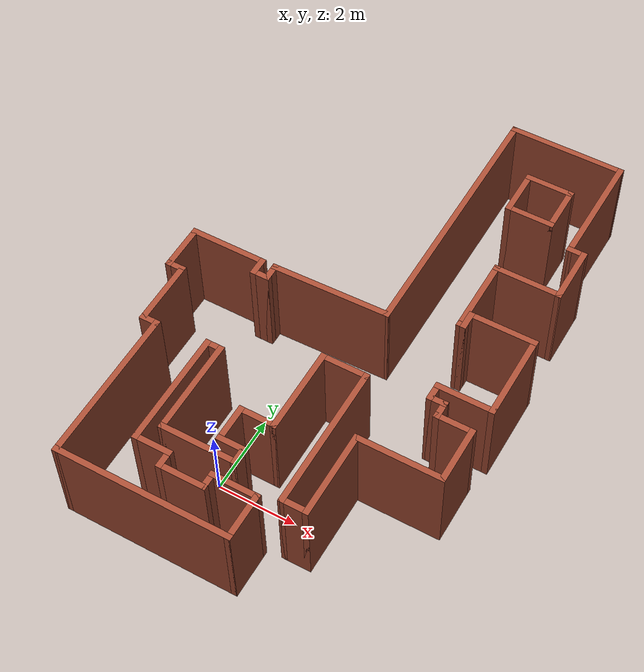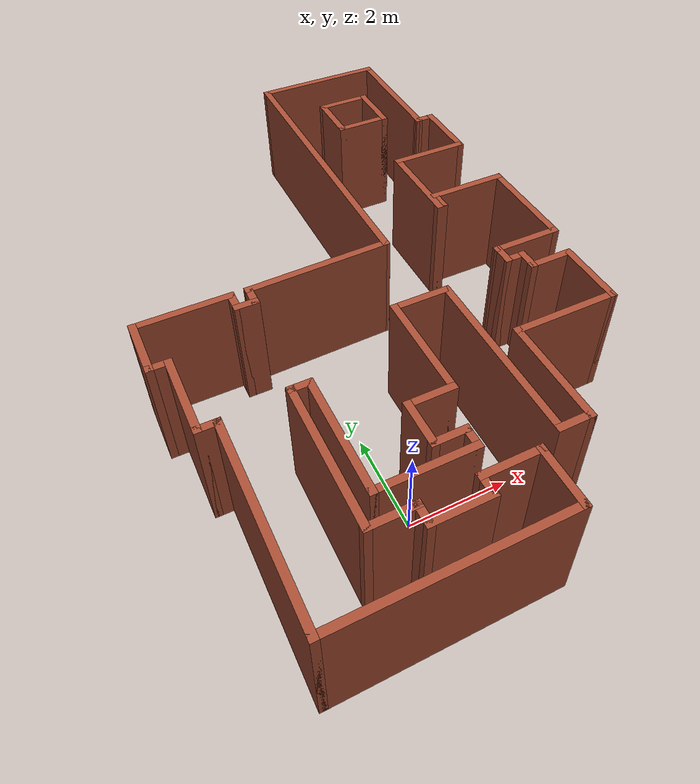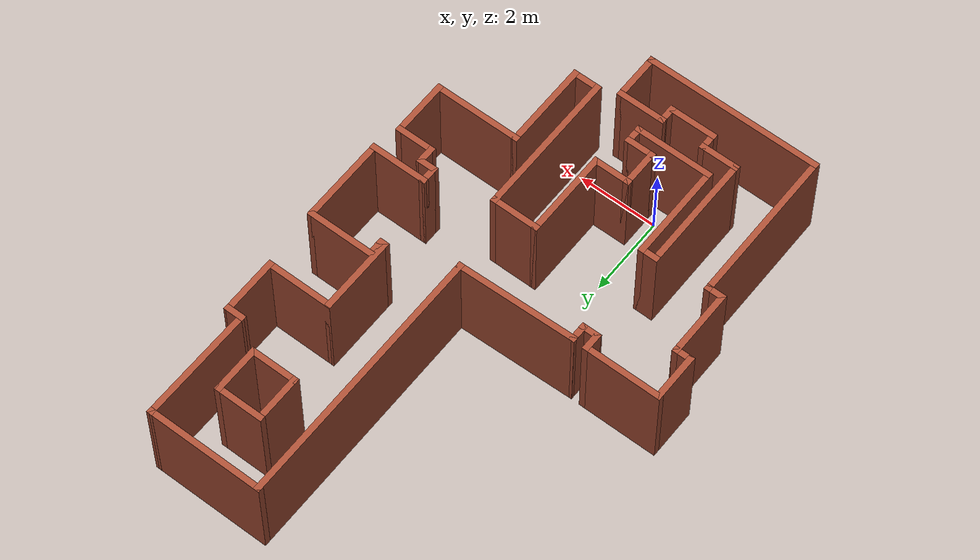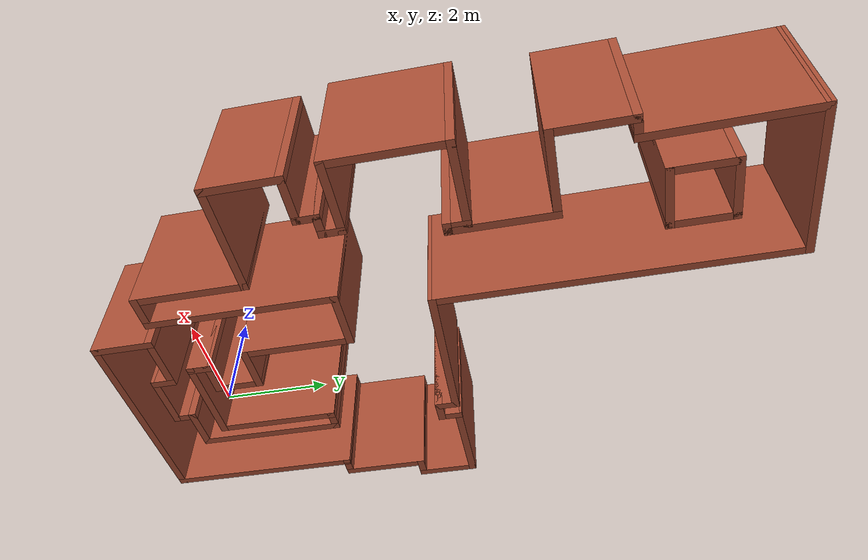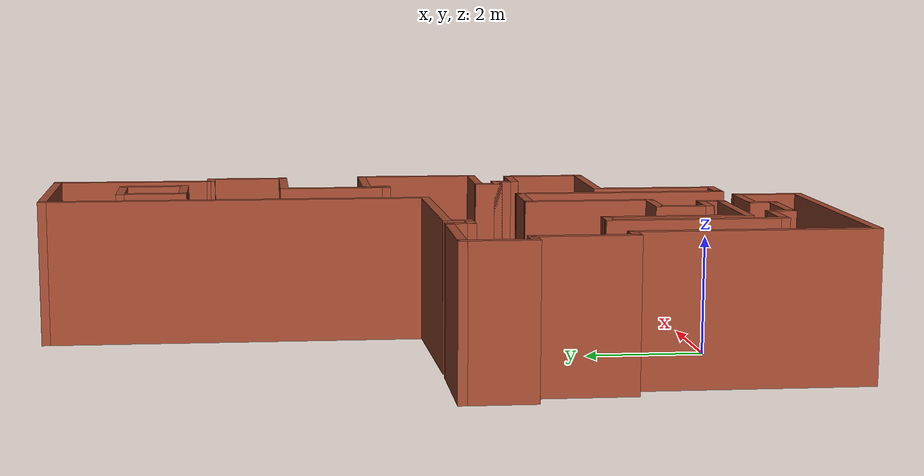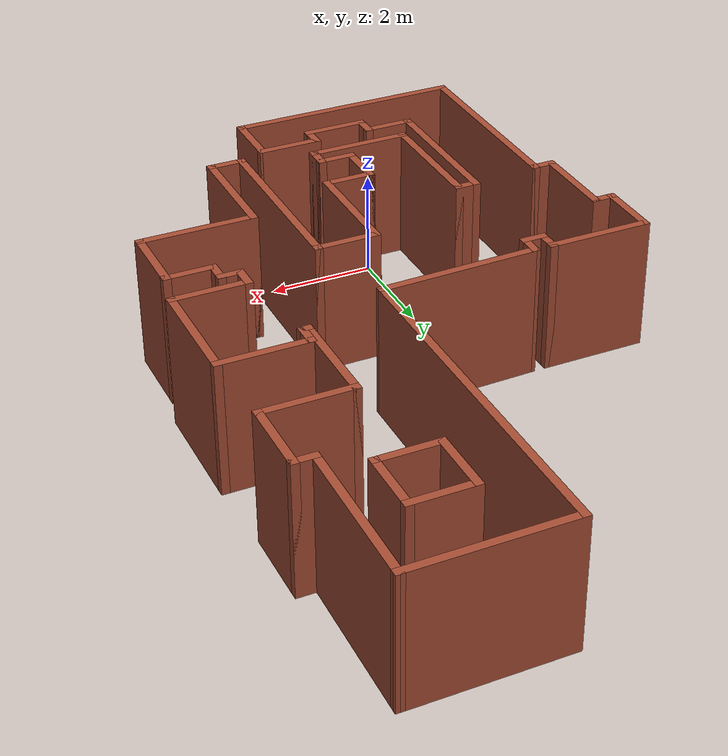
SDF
<?xml version='1.0'?>
<sdf version='1.6'>
  <model name='map_133'>
    <pose frame=''>0.888225 4.53364 0 0 -0 0</pose>
    <link name='Wall_0'>
      <collision name='Wall_0_Collision'>
        <geometry>
          <box>
            <size>3 0.15 2.5</size>
          </box>
        </geometry>
        <pose frame=''>0 0 1.25 0 -0 0</pose>
      </collision>
      <visual name='Wall_0_Visual'>
        <pose frame=''>0 0 1.25 0 -0 0</pose>
        <geometry>
          <box>
            <size>3 0.15 2.5</size>
          </box>
        </geometry>
        <material>
          <script>
            <uri>file://media/materials/scripts/gazebo.material</uri>
            <name>Gazebo/Bricks</name>
          </script>
          <ambient>1 1 1 1</ambient>
        </material>
        <meta>
          <layer>0</layer>
        </meta>
      </visual>
      <pose frame=''>2.35294 6.61348 0 0 -0 3.14159</pose>
    </link>
    <link name='Wall_1'>
      <collision name='Wall_1_Collision'>
        <geometry>
          <box>
            <size>6.75 0.15 2.5</size>
          </box>
        </geometry>
        <pose frame=''>0 0 1.25 0 -0 0</pose>
      </collision>
      <visual name='Wall_1_Visual'>
        <pose frame=''>0 0 1.25 0 -0 0</pose>
        <geometry>
          <box>
            <size>6.75 0.15 2.5</size>
          </box>
        </geometry>
        <material>
          <script>
            <uri>file://media/materials/scripts/gazebo.material</uri>
            <name>Gazebo/Bricks</name>
          </script>
          <ambient>1 1 1 1</ambient>
        </material>
        <meta>
          <layer>0</layer>
        </meta>
      </visual>
      <pose frame=''>0.927944 3.31348 0 0 -0 -1.5708</pose>
    </link>
    <link name='Wall_10'>
      <collision name='Wall_10_Collision'>
        <geometry>
          <box>
            <size>0.5 0.15 2.5</size>
          </box>
        </geometry>
        <pose frame=''>0 0 1.25 0 -0 0</pose>
      </collision>
      <visual name='Wall_10_Visual'>
        <pose frame=''>0 0 1.25 0 -0 0</pose>
        <geometry>
          <box>
            <size>0.5 0.15 2.5</size>
          </box>
        </geometry>
        <material>
          <script>
            <uri>file://media/materials/scripts/gazebo.material</uri>
            <name>Gazebo/Bricks</name>
          </script>
          <ambient>1 1 1 1</ambient>
        </material>
        <meta>
          <layer>0</layer>
        </meta>
      </visual>
      <pose frame=''>-4.025 -1.16422 0 0 -0 0</pose>
    </link>
    <link name='Wall_11'>
      <collision name='Wall_11_Collision'>
        <geometry>
          <box>
            <size>1.75 0.15 2.5</size>
          </box>
        </geometry>
        <pose frame=''>0 0 1.25 0 -0 0</pose>
      </collision>
      <visual name='Wall_11_Visual'>
        <pose frame=''>0 0 1.25 0 -0 0</pose>
        <geometry>
          <box>
            <size>1.75 0.15 2.5</size>
          </box>
        </geometry>
        <material>
          <script>
            <uri>file://media/materials/scripts/gazebo.material</uri>
            <name>Gazebo/Bricks</name>
          </script>
          <ambient>1 1 1 1</ambient>
        </material>
        <meta>
          <layer>0</layer>
        </meta>
      </visual>
      <pose frame=''>-3.85 -1.96422 0 0 -0 -1.5708</pose>
    </link>
    <link name='Wall_12'>
      <collision name='Wall_12_Collision'>
        <geometry>
          <box>
            <size>0.5 0.15 2.5</size>
          </box>
        </geometry>
        <pose frame=''>0 0 1.25 0 -0 0</pose>
      </collision>
      <visual name='Wall_12_Visual'>
        <pose frame=''>0 0 1.25 0 -0 0</pose>
        <geometry>
          <box>
            <size>0.5 0.15 2.5</size>
          </box>
        </geometry>
        <material>
          <script>
            <uri>file://media/materials/scripts/gazebo.material</uri>
            <name>Gazebo/Bricks</name>
          </script>
          <ambient>1 1 1 1</ambient>
        </material>
        <meta>
          <layer>0</layer>
        </meta>
      </visual>
      <pose frame=''>-3.675 -2.76422 0 0 -0 0</pose>
    </link>
    <link name='Wall_13'>
      <collision name='Wall_13_Collision'>
        <geometry>
          <box>
            <size>4 0.15 2.5</size>
          </box>
        </geometry>
        <pose frame=''>0 0 1.25 0 -0 0</pose>
      </collision>
      <visual name='Wall_13_Visual'>
        <pose frame=''>0 0 1.25 0 -0 0</pose>
        <geometry>
          <box>
            <size>4 0.15 2.5</size>
          </box>
        </geometry>
        <material>
          <script>
            <uri>file://media/materials/scripts/gazebo.material</uri>
            <name>Gazebo/Bricks</name>
          </script>
          <ambient>1 1 1 1</ambient>
        </material>
        <meta>
          <layer>0</layer>
        </meta>
      </visual>
      <pose frame=''>-3.5 -4.68922 0 0 -0 -1.5708</pose>
    </link>
    <link name='Wall_14'>
      <collision name='Wall_14_Collision'>
        <geometry>
          <box>
            <size>4.5 0.15 2.5</size>
          </box>
        </geometry>
        <pose frame=''>0 0 1.25 0 -0 0</pose>
      </collision>
      <visual name='Wall_14_Visual'>
        <pose frame=''>0 0 1.25 0 -0 0</pose>
        <geometry>
          <box>
            <size>4.5 0.15 2.5</size>
          </box>
        </geometry>
        <material>
          <script>
            <uri>file://media/materials/scripts/gazebo.material</uri>
            <name>Gazebo/Bricks</name>
          </script>
          <ambient>1 1 1 1</ambient>
        </material>
        <meta>
          <layer>0</layer>
        </meta>
      </visual>
      <pose frame=''>-1.325 -6.61422 0 0 -0 0</pose>
    </link>
    <link name='Wall_15'>
      <collision name='Wall_15_Collision'>
        <geometry>
          <box>
            <size>1.25 0.15 2.5</size>
          </box>
        </geometry>
        <pose frame=''>0 0 1.25 0 -0 0</pose>
      </collision>
      <visual name='Wall_15_Visual'>
        <pose frame=''>0 0 1.25 0 -0 0</pose>
        <geometry>
          <box>
            <size>1.25 0.15 2.5</size>
          </box>
        </geometry>
        <material>
          <script>
            <uri>file://media/materials/scripts/gazebo.material</uri>
            <name>Gazebo/Bricks</name>
          </script>
          <ambient>1 1 1 1</ambient>
        </material>
        <meta>
          <layer>0</layer>
        </meta>
      </visual>
      <pose frame=''>0.85 -6.06422 0 0 -0 1.5708</pose>
    </link>
    <link name='Wall_16'>
      <collision name='Wall_16_Collision'>
        <geometry>
          <box>
            <size>1.25 0.15 2.5</size>
          </box>
        </geometry>
        <pose frame=''>0 0 1.25 0 -0 0</pose>
      </collision>
      <visual name='Wall_16_Visual'>
        <pose frame=''>0 0 1.25 0 -0 0</pose>
        <geometry>
          <box>
            <size>1.25 0.15 2.5</size>
          </box>
        </geometry>
        <material>
          <script>
            <uri>file://media/materials/scripts/gazebo.material</uri>
            <name>Gazebo/Bricks</name>
          </script>
          <ambient>1 1 1 1</ambient>
        </material>
        <meta>
          <layer>0</layer>
        </meta>
      </visual>
      <pose frame=''>0.3 -5.51422 0 0 -0 3.14159</pose>
    </link>
    <link name='Wall_17'>
      <collision name='Wall_17_Collision'>
        <geometry>
          <box>
            <size>0.5 0.15 2.5</size>
          </box>
        </geometry>
        <pose frame=''>0 0 1.25 0 -0 0</pose>
      </collision>
      <visual name='Wall_17_Visual'>
        <pose frame=''>0 0 1.25 0 -0 0</pose>
        <geometry>
          <box>
            <size>0.5 0.15 2.5</size>
          </box>
        </geometry>
        <material>
          <script>
            <uri>file://media/materials/scripts/gazebo.material</uri>
            <name>Gazebo/Bricks</name>
          </script>
          <ambient>1 1 1 1</ambient>
        </material>
        <meta>
          <layer>0</layer>
        </meta>
      </visual>
      <pose frame=''>-0.25 -5.68922 0 0 -0 -1.5708</pose>
    </link>
    <link name='Wall_18'>
      <collision name='Wall_18_Collision'>
        <geometry>
          <box>
            <size>1.25 0.15 2.5</size>
          </box>
        </geometry>
        <pose frame=''>0 0 1.25 0 -0 0</pose>
      </collision>
      <visual name='Wall_18_Visual'>
        <pose frame=''>0 0 1.25 0 -0 0</pose>
        <geometry>
          <box>
            <size>1.25 0.15 2.5</size>
          </box>
        </geometry>
        <material>
          <script>
            <uri>file://media/materials/scripts/gazebo.material</uri>
            <name>Gazebo/Bricks</name>
          </script>
          <ambient>1 1 1 1</ambient>
        </material>
        <meta>
          <layer>0</layer>
        </meta>
      </visual>
      <pose frame=''>-0.8 -5.86422 0 0 -0 3.14159</pose>
    </link>
    <link name='Wall_19'>
      <collision name='Wall_19_Collision'>
        <geometry>
          <box>
            <size>0.5 0.15 2.5</size>
          </box>
        </geometry>
        <pose frame=''>0 0 1.25 0 -0 0</pose>
      </collision>
      <visual name='Wall_19_Visual'>
        <pose frame=''>0 0 1.25 0 -0 0</pose>
        <geometry>
          <box>
            <size>0.5 0.15 2.5</size>
          </box>
        </geometry>
        <material>
          <script>
            <uri>file://media/materials/scripts/gazebo.material</uri>
            <name>Gazebo/Bricks</name>
          </script>
          <ambient>1 1 1 1</ambient>
        </material>
        <meta>
          <layer>0</layer>
        </meta>
      </visual>
      <pose frame=''>-1.35 -5.68922 0 0 -0 1.5708</pose>
    </link>
    <link name='Wall_20'>
      <collision name='Wall_20_Collision'>
        <geometry>
          <box>
            <size>1 0.15 2.5</size>
          </box>
        </geometry>
        <pose frame=''>0 0 1.25 0 -0 0</pose>
      </collision>
      <visual name='Wall_20_Visual'>
        <pose frame=''>0 0 1.25 0 -0 0</pose>
        <geometry>
          <box>
            <size>1 0.15 2.5</size>
          </box>
        </geometry>
        <material>
          <script>
            <uri>file://media/materials/scripts/gazebo.material</uri>
            <name>Gazebo/Bricks</name>
          </script>
          <ambient>1 1 1 1</ambient>
        </material>
        <meta>
          <layer>0</layer>
        </meta>
      </visual>
      <pose frame=''>-1.775 -5.51422 0 0 -0 3.14159</pose>
    </link>
    <link name='Wall_21'>
      <collision name='Wall_21_Collision'>
        <geometry>
          <box>
            <size>3 0.15 2.5</size>
          </box>
        </geometry>
        <pose frame=''>0 0 1.25 0 -0 0</pose>
      </collision>
      <visual name='Wall_21_Visual'>
        <pose frame=''>0 0 1.25 0 -0 0</pose>
        <geometry>
          <box>
            <size>3 0.15 2.5</size>
          </box>
        </geometry>
        <material>
          <script>
            <uri>file://media/materials/scripts/gazebo.material</uri>
            <name>Gazebo/Bricks</name>
          </script>
          <ambient>1 1 1 1</ambient>
        </material>
        <meta>
          <layer>0</layer>
        </meta>
      </visual>
      <pose frame=''>-2.2 -4.08922 0 0 -0 1.5708</pose>
    </link>
    <link name='Wall_22'>
      <collision name='Wall_22_Collision'>
        <geometry>
          <box>
            <size>0.5 0.15 2.5</size>
          </box>
        </geometry>
        <pose frame=''>0 0 1.25 0 -0 0</pose>
      </collision>
      <visual name='Wall_22_Visual'>
        <pose frame=''>0 0 1.25 0 -0 0</pose>
        <geometry>
          <box>
            <size>0.5 0.15 2.5</size>
          </box>
        </geometry>
        <material>
          <script>
            <uri>file://media/materials/scripts/gazebo.material</uri>
            <name>Gazebo/Bricks</name>
          </script>
          <ambient>1 1 1 1</ambient>
        </material>
        <meta>
          <layer>0</layer>
        </meta>
      </visual>
      <pose frame=''>-2.025 -2.66422 0 0 -0 0</pose>
    </link>
    <link name='Wall_23'>
      <collision name='Wall_23_Collision'>
        <geometry>
          <box>
            <size>2.5 0.15 2.5</size>
          </box>
        </geometry>
        <pose frame=''>0 0 1.25 0 -0 0</pose>
      </collision>
      <visual name='Wall_23_Visual'>
        <pose frame=''>0 0 1.25 0 -0 0</pose>
        <geometry>
          <box>
            <size>2.5 0.15 2.5</size>
          </box>
        </geometry>
        <material>
          <script>
            <uri>file://media/materials/scripts/gazebo.material</uri>
            <name>Gazebo/Bricks</name>
          </script>
          <ambient>1 1 1 1</ambient>
        </material>
        <meta>
          <layer>0</layer>
        </meta>
      </visual>
      <pose frame=''>-1.85 -3.83922 0 0 -0 -1.5708</pose>
    </link>
    <link name='Wall_24'>
      <collision name='Wall_24_Collision'>
        <geometry>
          <box>
            <size>2 0.15 2.5</size>
          </box>
        </geometry>
        <pose frame=''>0 0 1.25 0 -0 0</pose>
      </collision>
      <visual name='Wall_24_Visual'>
        <pose frame=''>0 0 1.25 0 -0 0</pose>
        <geometry>
          <box>
            <size>2 0.15 2.5</size>
          </box>
        </geometry>
        <material>
          <script>
            <uri>file://media/materials/scripts/gazebo.material</uri>
            <name>Gazebo/Bricks</name>
          </script>
          <ambient>1 1 1 1</ambient>
        </material>
        <meta>
          <layer>0</layer>
        </meta>
      </visual>
      <pose frame=''>-0.925 -5.01422 0 0 -0 0</pose>
    </link>
    <link name='Wall_25'>
      <collision name='Wall_25_Collision'>
        <geometry>
          <box>
            <size>0.5 0.15 2.5</size>
          </box>
        </geometry>
        <pose frame=''>0 0 1.25 0 -0 0</pose>
      </collision>
      <visual name='Wall_25_Visual'>
        <pose frame=''>0 0 1.25 0 -0 0</pose>
        <geometry>
          <box>
            <size>0.5 0.15 2.5</size>
          </box>
        </geometry>
        <material>
          <script>
            <uri>file://media/materials/scripts/gazebo.material</uri>
            <name>Gazebo/Bricks</name>
          </script>
          <ambient>1 1 1 1</ambient>
        </material>
        <meta>
          <layer>0</layer>
        </meta>
      </visual>
      <pose frame=''>-0 -4.83922 0 0 -0 1.5708</pose>
    </link>
    <link name='Wall_26'>
      <collision name='Wall_26_Collision'>
        <geometry>
          <box>
            <size>0.75 0.15 2.5</size>
          </box>
        </geometry>
        <pose frame=''>0 0 1.25 0 -0 0</pose>
      </collision>
      <visual name='Wall_26_Visual'>
        <pose frame=''>0 0 1.25 0 -0 0</pose>
        <geometry>
          <box>
            <size>0.75 0.15 2.5</size>
          </box>
        </geometry>
        <material>
          <script>
            <uri>file://media/materials/scripts/gazebo.material</uri>
            <name>Gazebo/Bricks</name>
          </script>
          <ambient>1 1 1 1</ambient>
        </material>
        <meta>
          <layer>0</layer>
        </meta>
      </visual>
      <pose frame=''>-0.3 -4.66422 0 0 -0 3.14159</pose>
    </link>
    <link name='Wall_27'>
      <collision name='Wall_27_Collision'>
        <geometry>
          <box>
            <size>1 0.15 2.5</size>
          </box>
        </geometry>
        <pose frame=''>0 0 1.25 0 -0 0</pose>
      </collision>
      <visual name='Wall_27_Visual'>
        <pose frame=''>0 0 1.25 0 -0 0</pose>
        <geometry>
          <box>
            <size>1 0.15 2.5</size>
          </box>
        </geometry>
        <material>
          <script>
            <uri>file://media/materials/scripts/gazebo.material</uri>
            <name>Gazebo/Bricks</name>
          </script>
          <ambient>1 1 1 1</ambient>
        </material>
        <meta>
          <layer>0</layer>
        </meta>
      </visual>
      <pose frame=''>-0.6 -4.23922 0 0 -0 1.5708</pose>
    </link>
    <link name='Wall_28'>
      <collision name='Wall_28_Collision'>
        <geometry>
          <box>
            <size>1 0.15 2.5</size>
          </box>
        </geometry>
        <pose frame=''>0 0 1.25 0 -0 0</pose>
      </collision>
      <visual name='Wall_28_Visual'>
        <pose frame=''>0 0 1.25 0 -0 0</pose>
        <geometry>
          <box>
            <size>1 0.15 2.5</size>
          </box>
        </geometry>
        <material>
          <script>
            <uri>file://media/materials/scripts/gazebo.material</uri>
            <name>Gazebo/Bricks</name>
          </script>
          <ambient>1 1 1 1</ambient>
        </material>
        <meta>
          <layer>0</layer>
        </meta>
      </visual>
      <pose frame=''>-0.175 -3.81422 0 0 -0 0</pose>
    </link>
    <link name='Wall_30'>
      <collision name='Wall_30_Collision'>
        <geometry>
          <box>
            <size>3.07897 0.15 2.5</size>
          </box>
        </geometry>
        <pose frame=''>0 0 1.25 0 -0 0</pose>
      </collision>
      <visual name='Wall_30_Visual'>
        <pose frame=''>0 0 1.25 0 -0 0</pose>
        <geometry>
          <box>
            <size>3.07897 0.15 2.5</size>
          </box>
        </geometry>
        <material>
          <script>
            <uri>file://media/materials/scripts/gazebo.material</uri>
            <name>Gazebo/Bricks</name>
          </script>
          <ambient>1 1 1 1</ambient>
        </material>
        <meta>
          <layer>0</layer>
        </meta>
      </visual>
      <pose frame=''>-0.536028 -0.025369 0 0 -0 0.026533</pose>
    </link>
    <link name='Wall_35'>
      <collision name='Wall_35_Collision'>
        <geometry>
          <box>
            <size>0.75 0.15 2.5</size>
          </box>
        </geometry>
        <pose frame=''>0 0 1.25 0 -0 0</pose>
      </collision>
      <visual name='Wall_35_Visual'>
        <pose frame=''>0 0 1.25 0 -0 0</pose>
        <geometry>
          <box>
            <size>0.75 0.15 2.5</size>
          </box>
        </geometry>
        <material>
          <script>
            <uri>file://media/materials/scripts/gazebo.material</uri>
            <name>Gazebo/Bricks</name>
          </script>
          <ambient>1 1 1 1</ambient>
        </material>
        <meta>
          <layer>0</layer>
        </meta>
      </visual>
      <pose frame=''>1.65 -5.31422 0 0 -0 0</pose>
    </link>
    <link name='Wall_36'>
      <collision name='Wall_36_Collision'>
        <geometry>
          <box>
            <size>2.25 0.15 2.5</size>
          </box>
        </geometry>
        <pose frame=''>0 0 1.25 0 -0 0</pose>
      </collision>
      <visual name='Wall_36_Visual'>
        <pose frame=''>0 0 1.25 0 -0 0</pose>
        <geometry>
          <box>
            <size>2.25 0.15 2.5</size>
          </box>
        </geometry>
        <material>
          <script>
            <uri>file://media/materials/scripts/gazebo.material</uri>
            <name>Gazebo/Bricks</name>
          </script>
          <ambient>1 1 1 1</ambient>
        </material>
        <meta>
          <layer>0</layer>
        </meta>
      </visual>
      <pose frame=''>1.95 -4.26422 0 0 -0 1.5708</pose>
    </link>
    <link name='Wall_37'>
      <collision name='Wall_37_Collision'>
        <geometry>
          <box>
            <size>2.25 0.15 2.5</size>
          </box>
        </geometry>
        <pose frame=''>0 0 1.25 0 -0 0</pose>
      </collision>
      <visual name='Wall_37_Visual'>
        <pose frame=''>0 0 1.25 0 -0 0</pose>
        <geometry>
          <box>
            <size>2.25 0.15 2.5</size>
          </box>
        </geometry>
        <material>
          <script>
            <uri>file://media/materials/scripts/gazebo.material</uri>
            <name>Gazebo/Bricks</name>
          </script>
          <ambient>1 1 1 1</ambient>
        </material>
        <meta>
          <layer>0</layer>
        </meta>
      </visual>
      <pose frame=''>3 -3.21422 0 0 -0 0</pose>
    </link>
    <link name='Wall_38'>
      <collision name='Wall_38_Collision'>
        <geometry>
          <box>
            <size>1.5 0.15 2.5</size>
          </box>
        </geometry>
        <pose frame=''>0 0 1.25 0 -0 0</pose>
      </collision>
      <visual name='Wall_38_Visual'>
        <pose frame=''>0 0 1.25 0 -0 0</pose>
        <geometry>
          <box>
            <size>1.5 0.15 2.5</size>
          </box>
        </geometry>
        <material>
          <script>
            <uri>file://media/materials/scripts/gazebo.material</uri>
            <name>Gazebo/Bricks</name>
          </script>
          <ambient>1 1 1 1</ambient>
        </material>
        <meta>
          <layer>0</layer>
        </meta>
      </visual>
      <pose frame=''>4.05 -2.53922 0 0 -0 1.5708</pose>
    </link>
    <link name='Wall_39'>
      <collision name='Wall_39_Collision'>
        <geometry>
          <box>
            <size>1 0.15 2.5</size>
          </box>
        </geometry>
        <pose frame=''>0 0 1.25 0 -0 0</pose>
      </collision>
      <visual name='Wall_39_Visual'>
        <pose frame=''>0 0 1.25 0 -0 0</pose>
        <geometry>
          <box>
            <size>1 0.15 2.5</size>
          </box>
        </geometry>
        <material>
          <script>
            <uri>file://media/materials/scripts/gazebo.material</uri>
            <name>Gazebo/Bricks</name>
          </script>
          <ambient>1 1 1 1</ambient>
        </material>
        <meta>
          <layer>0</layer>
        </meta>
      </visual>
      <pose frame=''>3.625 -1.86422 0 0 -0 3.14159</pose>
    </link>
    <link name='Wall_40'>
      <collision name='Wall_40_Collision'>
        <geometry>
          <box>
            <size>0.5 0.15 2.5</size>
          </box>
        </geometry>
        <pose frame=''>0 0 1.25 0 -0 0</pose>
      </collision>
      <visual name='Wall_40_Visual'>
        <pose frame=''>0 0 1.25 0 -0 0</pose>
        <geometry>
          <box>
            <size>0.5 0.15 2.5</size>
          </box>
        </geometry>
        <material>
          <script>
            <uri>file://media/materials/scripts/gazebo.material</uri>
            <name>Gazebo/Bricks</name>
          </script>
          <ambient>1 1 1 1</ambient>
        </material>
        <meta>
          <layer>0</layer>
        </meta>
      </visual>
      <pose frame=''>3.2 -1.68922 0 0 -0 1.5708</pose>
    </link>
    <link name='Wall_41'>
      <collision name='Wall_41_Collision'>
        <geometry>
          <box>
            <size>0.5 0.15 2.5</size>
          </box>
        </geometry>
        <pose frame=''>0 0 1.25 0 -0 0</pose>
      </collision>
      <visual name='Wall_41_Visual'>
        <pose frame=''>0 0 1.25 0 -0 0</pose>
        <geometry>
          <box>
            <size>0.5 0.15 2.5</size>
          </box>
        </geometry>
        <material>
          <script>
            <uri>file://media/materials/scripts/gazebo.material</uri>
            <name>Gazebo/Bricks</name>
          </script>
          <ambient>1 1 1 1</ambient>
        </material>
        <meta>
          <layer>0</layer>
        </meta>
      </visual>
      <pose frame=''>3.025 -1.51422 0 0 -0 3.14159</pose>
    </link>
    <link name='Wall_42'>
      <collision name='Wall_42_Collision'>
        <geometry>
          <box>
            <size>0.5 0.15 2.5</size>
          </box>
        </geometry>
        <pose frame=''>0 0 1.25 0 -0 0</pose>
      </collision>
      <visual name='Wall_42_Visual'>
        <pose frame=''>0 0 1.25 0 -0 0</pose>
        <geometry>
          <box>
            <size>0.5 0.15 2.5</size>
          </box>
        </geometry>
        <material>
          <script>
            <uri>file://media/materials/scripts/gazebo.material</uri>
            <name>Gazebo/Bricks</name>
          </script>
          <ambient>1 1 1 1</ambient>
        </material>
        <meta>
          <layer>0</layer>
        </meta>
      </visual>
      <pose frame=''>2.85 -1.33922 0 0 -0 1.5708</pose>
    </link>
    <link name='Wall_43'>
      <collision name='Wall_43_Collision'>
        <geometry>
          <box>
            <size>1.5 0.15 2.5</size>
          </box>
        </geometry>
        <pose frame=''>0 0 1.25 0 -0 0</pose>
      </collision>
      <visual name='Wall_43_Visual'>
        <pose frame=''>0 0 1.25 0 -0 0</pose>
        <geometry>
          <box>
            <size>1.5 0.15 2.5</size>
          </box>
        </geometry>
        <material>
          <script>
            <uri>file://media/materials/scripts/gazebo.material</uri>
            <name>Gazebo/Bricks</name>
          </script>
          <ambient>1 1 1 1</ambient>
        </material>
        <meta>
          <layer>0</layer>
        </meta>
      </visual>
      <pose frame=''>3.525 -1.16422 0 0 -0 0</pose>
    </link>
    <link name='Wall_44'>
      <collision name='Wall_44_Collision'>
        <geometry>
          <box>
            <size>2.25 0.15 2.5</size>
          </box>
        </geometry>
        <pose frame=''>0 0 1.25 0 -0 0</pose>
      </collision>
      <visual name='Wall_44_Visual'>
        <pose frame=''>0 0 1.25 0 -0 0</pose>
        <geometry>
          <box>
            <size>2.25 0.15 2.5</size>
          </box>
        </geometry>
        <material>
          <script>
            <uri>file://media/materials/scripts/gazebo.material</uri>
            <name>Gazebo/Bricks</name>
          </script>
          <ambient>1 1 1 1</ambient>
        </material>
        <meta>
          <layer>0</layer>
        </meta>
      </visual>
      <pose frame=''>4.2 -0.114222 0 0 -0 1.5708</pose>
    </link>
    <link name='Wall_45'>
      <collision name='Wall_45_Collision'>
        <geometry>
          <box>
            <size>1.75 0.15 2.5</size>
          </box>
        </geometry>
        <pose frame=''>0 0 1.25 0 -0 0</pose>
      </collision>
      <visual name='Wall_45_Visual'>
        <pose frame=''>0 0 1.25 0 -0 0</pose>
        <geometry>
          <box>
            <size>1.75 0.15 2.5</size>
          </box>
        </geometry>
        <material>
          <script>
            <uri>file://media/materials/scripts/gazebo.material</uri>
            <name>Gazebo/Bricks</name>
          </script>
          <ambient>1 1 1 1</ambient>
        </material>
        <meta>
          <layer>0</layer>
        </meta>
      </visual>
      <pose frame=''>3.4 0.935778 0 0 -0 3.14159</pose>
    </link>
    <link name='Wall_46'>
      <collision name='Wall_46_Collision'>
        <geometry>
          <box>
            <size>0.5 0.15 2.5</size>
          </box>
        </geometry>
        <pose frame=''>0 0 1.25 0 -0 0</pose>
      </collision>
      <visual name='Wall_46_Visual'>
        <pose frame=''>0 0 1.25 0 -0 0</pose>
        <geometry>
          <box>
            <size>0.5 0.15 2.5</size>
          </box>
        </geometry>
        <material>
          <script>
            <uri>file://media/materials/scripts/gazebo.material</uri>
            <name>Gazebo/Bricks</name>
          </script>
          <ambient>1 1 1 1</ambient>
        </material>
        <meta>
          <layer>0</layer>
        </meta>
      </visual>
      <pose frame=''>2.6 0.760778 0 0 -0 -1.5708</pose>
    </link>
    <link name='Wall_47'>
      <collision name='Wall_47_Collision'>
        <geometry>
          <box>
            <size>0.25 0.15 2.5</size>
          </box>
        </geometry>
        <pose frame=''>0 0 1.25 0 -0 0</pose>
      </collision>
      <visual name='Wall_47_Visual'>
        <pose frame=''>0 0 1.25 0 -0 0</pose>
        <geometry>
          <box>
            <size>0.25 0.15 2.5</size>
          </box>
        </geometry>
        <material>
          <script>
            <uri>file://media/materials/scripts/gazebo.material</uri>
            <name>Gazebo/Bricks</name>
          </script>
          <ambient>1 1 1 1</ambient>
        </material>
        <meta>
          <layer>0</layer>
        </meta>
      </visual>
      <pose frame=''>2.55 0.585778 0 0 -0 3.14159</pose>
    </link>
    <link name='Wall_48'>
      <collision name='Wall_48_Collision'>
        <geometry>
          <box>
            <size>2 0.15 2.5</size>
          </box>
        </geometry>
        <pose frame=''>0 0 1.25 0 -0 0</pose>
      </collision>
      <visual name='Wall_48_Visual'>
        <pose frame=''>0 0 1.25 0 -0 0</pose>
        <geometry>
          <box>
            <size>2 0.15 2.5</size>
          </box>
        </geometry>
        <material>
          <script>
            <uri>file://media/materials/scripts/gazebo.material</uri>
            <name>Gazebo/Bricks</name>
          </script>
          <ambient>1 1 1 1</ambient>
        </material>
        <meta>
          <layer>0</layer>
        </meta>
      </visual>
      <pose frame=''>2.5 1.51078 0 0 -0 1.5708</pose>
    </link>
    <link name='Wall_49'>
      <collision name='Wall_49_Collision'>
        <geometry>
          <box>
            <size>1.75 0.15 2.5</size>
          </box>
        </geometry>
        <pose frame=''>0 0 1.25 0 -0 0</pose>
      </collision>
      <visual name='Wall_49_Visual'>
        <pose frame=''>0 0 1.25 0 -0 0</pose>
        <geometry>
          <box>
            <size>1.75 0.15 2.5</size>
          </box>
        </geometry>
        <material>
          <script>
            <uri>file://media/materials/scripts/gazebo.material</uri>
            <name>Gazebo/Bricks</name>
          </script>
          <ambient>1 1 1 1</ambient>
        </material>
        <meta>
          <layer>0</layer>
        </meta>
      </visual>
      <pose frame=''>3.3 2.43578 0 0 -0 0</pose>
    </link>
    <link name='Wall_5'>
      <collision name='Wall_5_Collision'>
        <geometry>
          <box>
            <size>0.5 0.15 2.5</size>
          </box>
        </geometry>
        <pose frame=''>0 0 1.25 0 -0 0</pose>
      </collision>
      <visual name='Wall_5_Visual'>
        <pose frame=''>0 0 1.25 0 -0 0</pose>
        <geometry>
          <box>
            <size>0.5 0.15 2.5</size>
          </box>
        </geometry>
        <material>
          <script>
            <uri>file://media/materials/scripts/gazebo.material</uri>
            <name>Gazebo/Bricks</name>
          </script>
          <ambient>1 1 1 1</ambient>
        </material>
        <meta>
          <layer>0</layer>
        </meta>
      </visual>
      <pose frame=''>-2 -0.239222 0 0 -0 -1.5708</pose>
    </link>
    <link name='Wall_50'>
      <collision name='Wall_50_Collision'>
        <geometry>
          <box>
            <size>1.5 0.15 2.5</size>
          </box>
        </geometry>
        <pose frame=''>0 0 1.25 0 -0 0</pose>
      </collision>
      <visual name='Wall_50_Visual'>
        <pose frame=''>0 0 1.25 0 -0 0</pose>
        <geometry>
          <box>
            <size>1.5 0.15 2.5</size>
          </box>
        </geometry>
        <material>
          <script>
            <uri>file://media/materials/scripts/gazebo.material</uri>
            <name>Gazebo/Bricks</name>
          </script>
          <ambient>1 1 1 1</ambient>
        </material>
        <meta>
          <layer>0</layer>
        </meta>
      </visual>
      <pose frame=''>4.1 3.11078 0 0 -0 1.5708</pose>
    </link>
    <link name='Wall_53'>
      <collision name='Wall_53_Collision'>
        <geometry>
          <box>
            <size>0.5 0.15 2.5</size>
          </box>
        </geometry>
        <pose frame=''>0 0 1.25 0 -0 0</pose>
      </collision>
      <visual name='Wall_53_Visual'>
        <pose frame=''>0 0 1.25 0 -0 0</pose>
        <geometry>
          <box>
            <size>0.5 0.15 2.5</size>
          </box>
        </geometry>
        <material>
          <script>
            <uri>file://media/materials/scripts/gazebo.material</uri>
            <name>Gazebo/Bricks</name>
          </script>
          <ambient>1 1 1 1</ambient>
        </material>
        <meta>
          <layer>0</layer>
        </meta>
      </visual>
      <pose frame=''>3.925 3.78578 0 0 -0 3.14159</pose>
    </link>
    <link name='Wall_54'>
      <collision name='Wall_54_Collision'>
        <geometry>
          <box>
            <size>2.97784 0.15 2.5</size>
          </box>
        </geometry>
        <pose frame=''>0 0 1.25 0 -0 0</pose>
      </collision>
      <visual name='Wall_54_Visual'>
        <pose frame=''>0 0 1.25 0 -0 0</pose>
        <geometry>
          <box>
            <size>2.97784 0.15 2.5</size>
          </box>
        </geometry>
        <material>
          <script>
            <uri>file://media/materials/scripts/gazebo.material</uri>
            <name>Gazebo/Bricks</name>
          </script>
          <ambient>1 1 1 1</ambient>
        </material>
        <meta>
          <layer>0</layer>
        </meta>
      </visual>
      <pose frame=''>3.76397 5.19963 0 0 -0 1.56091</pose>
    </link>
    <link name='Wall_56'>
      <collision name='Wall_56_Collision'>
        <geometry>
          <box>
            <size>2.25 0.15 2.5</size>
          </box>
        </geometry>
        <pose frame=''>0 0 1.25 0 -0 0</pose>
      </collision>
      <visual name='Wall_56_Visual'>
        <pose frame=''>0 0 1.25 0 -0 0</pose>
        <geometry>
          <box>
            <size>2.25 0.15 2.5</size>
          </box>
        </geometry>
        <material>
          <script>
            <uri>file://media/materials/scripts/gazebo.material</uri>
            <name>Gazebo/Bricks</name>
          </script>
          <ambient>1 1 1 1</ambient>
        </material>
        <meta>
          <layer>0</layer>
        </meta>
      </visual>
      <pose frame=''>0.25 -2.76422 0 0 -0 1.5708</pose>
    </link>
    <link name='Wall_59'>
      <collision name='Wall_59_Collision'>
        <geometry>
          <box>
            <size>1.25 0.15 2.5</size>
          </box>
        </geometry>
        <pose frame=''>0 0 1.25 0 -0 0</pose>
      </collision>
      <visual name='Wall_59_Visual'>
        <pose frame=''>0 0 1.25 0 -0 0</pose>
        <geometry>
          <box>
            <size>1.25 0.15 2.5</size>
          </box>
        </geometry>
        <material>
          <script>
            <uri>file://media/materials/scripts/gazebo.material</uri>
            <name>Gazebo/Bricks</name>
          </script>
          <ambient>1 1 1 1</ambient>
        </material>
        <meta>
          <layer>0</layer>
        </meta>
      </visual>
      <pose frame=''>0.8 -1.71422 0 0 -0 0</pose>
    </link>
    <link name='Wall_6'>
      <collision name='Wall_6_Collision'>
        <geometry>
          <box>
            <size>0.5 0.15 2.5</size>
          </box>
        </geometry>
        <pose frame=''>0 0 1.25 0 -0 0</pose>
      </collision>
      <visual name='Wall_6_Visual'>
        <pose frame=''>0 0 1.25 0 -0 0</pose>
        <geometry>
          <box>
            <size>0.5 0.15 2.5</size>
          </box>
        </geometry>
        <material>
          <script>
            <uri>file://media/materials/scripts/gazebo.material</uri>
            <name>Gazebo/Bricks</name>
          </script>
          <ambient>1 1 1 1</ambient>
        </material>
        <meta>
          <layer>0</layer>
        </meta>
      </visual>
      <pose frame=''>-2.175 -0.414222 0 0 -0 3.14159</pose>
    </link>
    <link name='Wall_60'>
      <collision name='Wall_60_Collision'>
        <geometry>
          <box>
            <size>3.75 0.15 2.5</size>
          </box>
        </geometry>
        <pose frame=''>0 0 1.25 0 -0 0</pose>
      </collision>
      <visual name='Wall_60_Visual'>
        <pose frame=''>0 0 1.25 0 -0 0</pose>
        <geometry>
          <box>
            <size>3.75 0.15 2.5</size>
          </box>
        </geometry>
        <material>
          <script>
            <uri>file://media/materials/scripts/gazebo.material</uri>
            <name>Gazebo/Bricks</name>
          </script>
          <ambient>1 1 1 1</ambient>
        </material>
        <meta>
          <layer>0</layer>
        </meta>
      </visual>
      <pose frame=''>1.35 -3.51422 0 0 -0 -1.5708</pose>
    </link>
    <link name='Wall_64'>
      <collision name='Wall_64_Collision'>
        <geometry>
          <box>
            <size>1.25 0.15 2.5</size>
          </box>
        </geometry>
        <pose frame=''>0 0 1.25 0 -0 0</pose>
      </collision>
      <visual name='Wall_64_Visual'>
        <pose frame=''>0 0 1.25 0 -0 0</pose>
        <geometry>
          <box>
            <size>1.25 0.15 2.5</size>
          </box>
        </geometry>
        <material>
          <script>
            <uri>file://media/materials/scripts/gazebo.material</uri>
            <name>Gazebo/Bricks</name>
          </script>
          <ambient>1 1 1 1</ambient>
        </material>
        <meta>
          <layer>0</layer>
        </meta>
      </visual>
      <pose frame=''>1.9322 4.80297 0 0 -0 -1.5708</pose>
    </link>
    <link name='Wall_65'>
      <collision name='Wall_65_Collision'>
        <geometry>
          <box>
            <size>1.25 0.15 2.5</size>
          </box>
        </geometry>
        <pose frame=''>0 0 1.25 0 -0 0</pose>
      </collision>
      <visual name='Wall_65_Visual'>
        <pose frame=''>0 0 1.25 0 -0 0</pose>
        <geometry>
          <box>
            <size>1.25 0.15 2.5</size>
          </box>
        </geometry>
        <material>
          <script>
            <uri>file://media/materials/scripts/gazebo.material</uri>
            <name>Gazebo/Bricks</name>
          </script>
          <ambient>1 1 1 1</ambient>
        </material>
        <meta>
          <layer>0</layer>
        </meta>
      </visual>
      <pose frame=''>2.4822 4.25297 0 0 -0 0</pose>
    </link>
    <link name='Wall_66'>
      <collision name='Wall_66_Collision'>
        <geometry>
          <box>
            <size>1.25 0.15 2.5</size>
          </box>
        </geometry>
        <pose frame=''>0 0 1.25 0 -0 0</pose>
      </collision>
      <visual name='Wall_66_Visual'>
        <pose frame=''>0 0 1.25 0 -0 0</pose>
        <geometry>
          <box>
            <size>1.25 0.15 2.5</size>
          </box>
        </geometry>
        <material>
          <script>
            <uri>file://media/materials/scripts/gazebo.material</uri>
            <name>Gazebo/Bricks</name>
          </script>
          <ambient>1 1 1 1</ambient>
        </material>
        <meta>
          <layer>0</layer>
        </meta>
      </visual>
      <pose frame=''>3.0322 4.80297 0 0 -0 1.5708</pose>
    </link>
    <link name='Wall_67'>
      <collision name='Wall_67_Collision'>
        <geometry>
          <box>
            <size>1.25 0.15 2.5</size>
          </box>
        </geometry>
        <pose frame=''>0 0 1.25 0 -0 0</pose>
      </collision>
      <visual name='Wall_67_Visual'>
        <pose frame=''>0 0 1.25 0 -0 0</pose>
        <geometry>
          <box>
            <size>1.25 0.15 2.5</size>
          </box>
        </geometry>
        <material>
          <script>
            <uri>file://media/materials/scripts/gazebo.material</uri>
            <name>Gazebo/Bricks</name>
          </script>
          <ambient>1 1 1 1</ambient>
        </material>
        <meta>
          <layer>0</layer>
        </meta>
      </visual>
      <pose frame=''>2.4822 5.35297 0 0 -0 3.14159</pose>
    </link>
    <link name='Wall_7'>
      <collision name='Wall_7_Collision'>
        <geometry>
          <box>
            <size>0.5 0.15 2.5</size>
          </box>
        </geometry>
        <pose frame=''>0 0 1.25 0 -0 0</pose>
      </collision>
      <visual name='Wall_7_Visual'>
        <pose frame=''>0 0 1.25 0 -0 0</pose>
        <geometry>
          <box>
            <size>0.5 0.15 2.5</size>
          </box>
        </geometry>
        <material>
          <script>
            <uri>file://media/materials/scripts/gazebo.material</uri>
            <name>Gazebo/Bricks</name>
          </script>
          <ambient>1 1 1 1</ambient>
        </material>
        <meta>
          <layer>0</layer>
        </meta>
      </visual>
      <pose frame=''>-2.35 -0.239222 0 0 -0 1.5708</pose>
    </link>
    <link name='Wall_8'>
      <collision name='Wall_8_Collision'>
        <geometry>
          <box>
            <size>2 0.15 2.5</size>
          </box>
        </geometry>
        <pose frame=''>0 0 1.25 0 -0 0</pose>
      </collision>
      <visual name='Wall_8_Visual'>
        <pose frame=''>0 0 1.25 0 -0 0</pose>
        <geometry>
          <box>
            <size>2 0.15 2.5</size>
          </box>
        </geometry>
        <material>
          <script>
            <uri>file://media/materials/scripts/gazebo.material</uri>
            <name>Gazebo/Bricks</name>
          </script>
          <ambient>1 1 1 1</ambient>
        </material>
        <meta>
          <layer>0</layer>
        </meta>
      </visual>
      <pose frame=''>-3.275 -0.064222 0 0 -0 3.14159</pose>
    </link>
    <link name='Wall_9'>
      <collision name='Wall_9_Collision'>
        <geometry>
          <box>
            <size>1.25 0.15 2.5</size>
          </box>
        </geometry>
        <pose frame=''>0 0 1.25 0 -0 0</pose>
      </collision>
      <visual name='Wall_9_Visual'>
        <pose frame=''>0 0 1.25 0 -0 0</pose>
        <geometry>
          <box>
            <size>1.25 0.15 2.5</size>
          </box>
        </geometry>
        <material>
          <script>
            <uri>file://media/materials/scripts/gazebo.material</uri>
            <name>Gazebo/Bricks</name>
          </script>
          <ambient>1 1 1 1</ambient>
        </material>
        <meta>
          <layer>0</layer>
        </meta>
      </visual>
      <pose frame=''>-4.2 -0.614222 0 0 -0 -1.5708</pose>
    </link>
    <static>1</static>
  </model>
</sdf>
